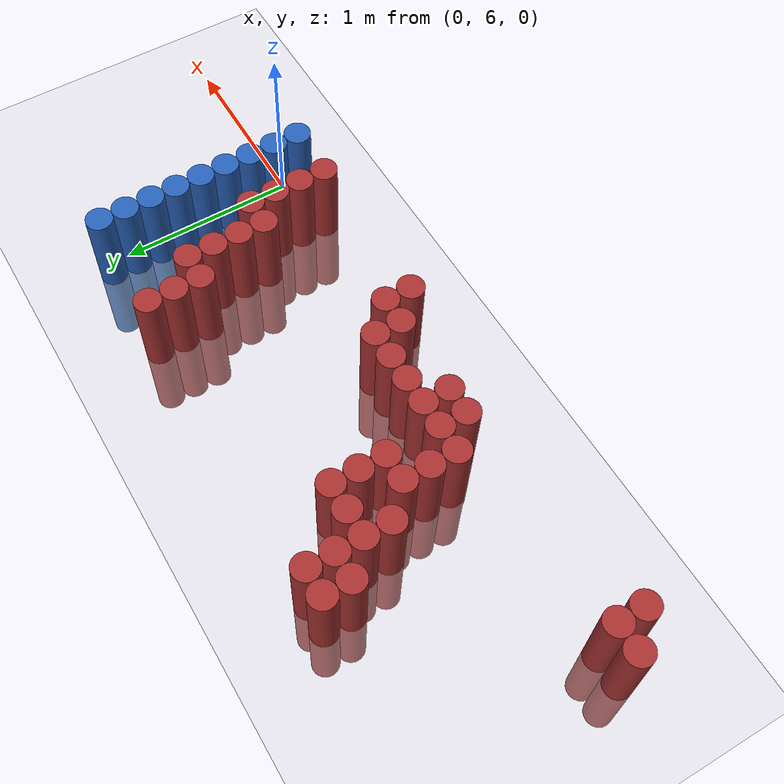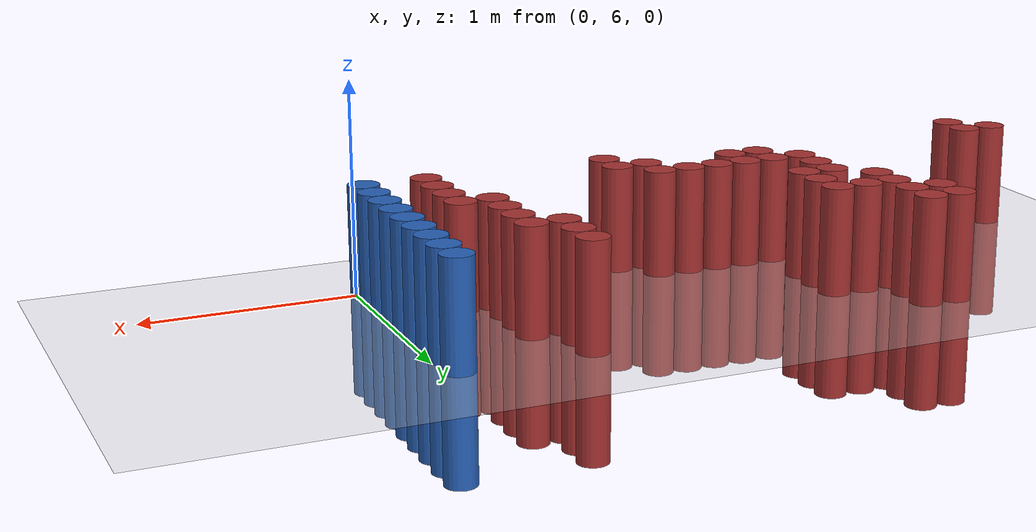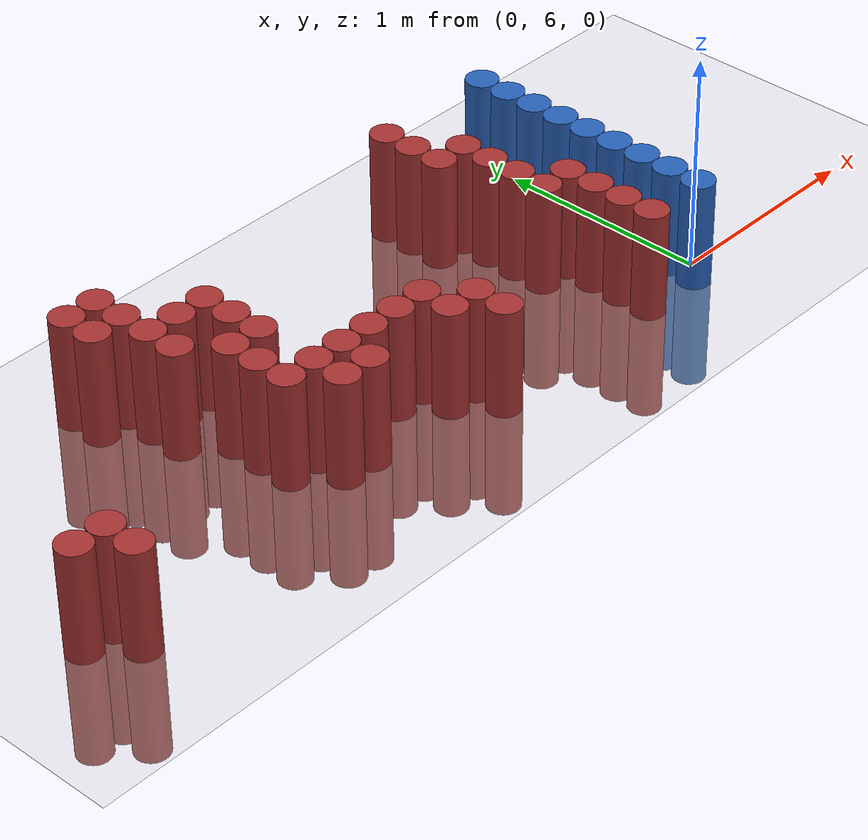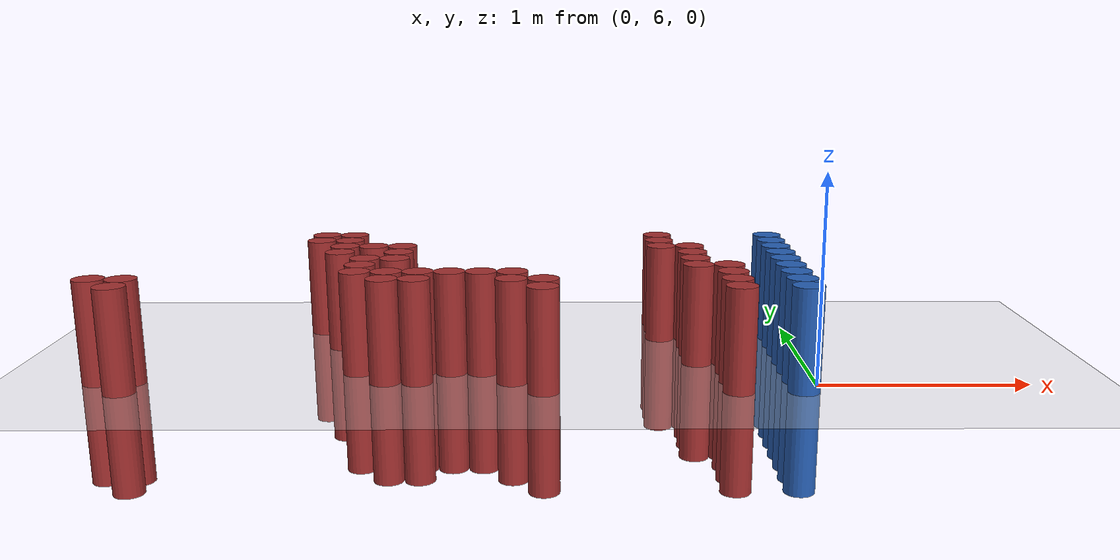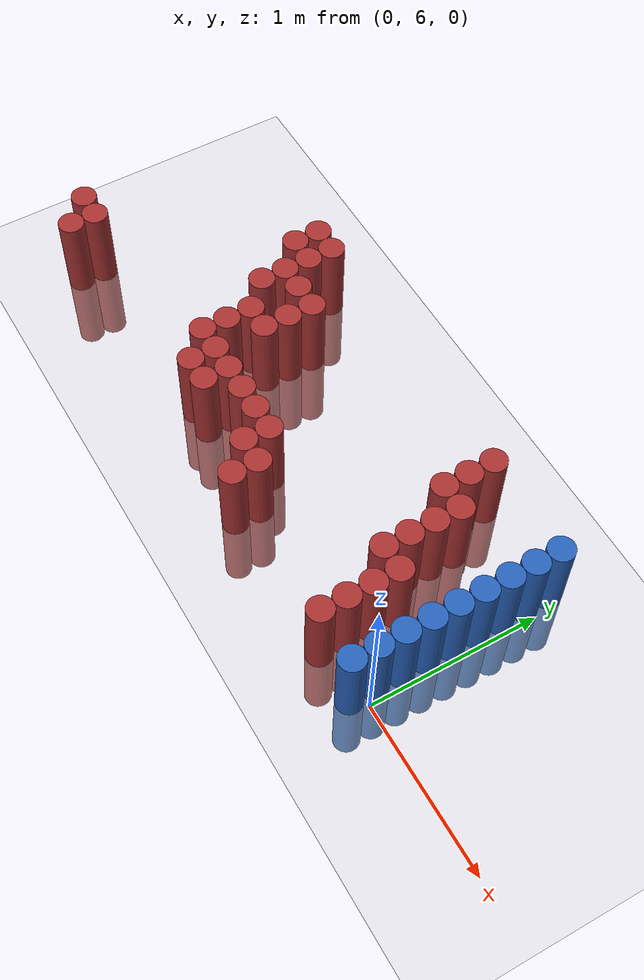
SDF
<sdf version="1.6">
 <world name="default">
  <model name="ground_plane">
   <static>1</static>
   <link name="link">
    <collision name="collision">
     <geometry><plane><normal>0 0 1</normal><size>100 100</size></plane></geometry>
     <surface><friction><ode><mu>100</mu><mu2>50</mu2></ode></friction></surface>
    </collision>
    <visual name="visual">
     <cast_shadows>0</cast_shadows>
     <geometry><plane><normal>0 0 1</normal><size>100 100</size></plane></geometry>
     <material>
      <script><uri>file://media/materials/scripts/gazebo.material</uri><name>Gazebo/Grey</name></script>
     </material>
    </visual>
   </link>
  </model>
  <model name="unit_cylinder_158">
   <static>1</static>
   <pose>-3.375000 6.075000 0.000000 0.000000 0.000000 0.000000</pose>
   <link name="link">
    <inertial>
     <mass>1</mass>
     <inertia><ixx>0.145833</ixx><ixy>0</ixy><ixz>0</ixz><iyy>0.145833</iyy><iyz>0</iyz><izz>0.125</izz></inertia>
    </inertial>
    <collision name="collision">
     <geometry><cylinder><radius>0.075000</radius><length>1</length></cylinder></geometry>
    </collision>
    <visual name="visual">
     <geometry><cylinder><radius>0.075000</radius><length>1</length></cylinder></geometry>
     <material>
      <ambient>0.648000 0.192000 0.192000 1</ambient>
      <diffuse>0.648000 0.192000 0.192000 1</diffuse>
     </material>
     <material>
      <script><name>Gazebo/Grey</name><uri>file://media/materials/scripts/gazebo.material</uri></script>
     </material>
    </visual>
   </link>
  </model>
  <model name="unit_cylinder_167">
   <static>1</static>
   <pose>-3.225000 5.925000 0.000000 0.000000 0.000000 0.000000</pose>
   <link name="link">
    <inertial>
     <mass>1</mass>
     <inertia><ixx>0.145833</ixx><ixy>0</ixy><ixz>0</ixz><iyy>0.145833</iyy><iyz>0</iyz><izz>0.125</izz></inertia>
    </inertial>
    <collision name="collision">
     <geometry><cylinder><radius>0.075000</radius><length>1</length></cylinder></geometry>
    </collision>
    <visual name="visual">
     <geometry><cylinder><radius>0.075000</radius><length>1</length></cylinder></geometry>
     <material>
      <ambient>0.648000 0.192000 0.192000 1</ambient>
      <diffuse>0.648000 0.192000 0.192000 1</diffuse>
     </material>
     <material>
      <script><name>Gazebo/Grey</name><uri>file://media/materials/scripts/gazebo.material</uri></script>
     </material>
    </visual>
   </link>
  </model>
  <model name="unit_cylinder_168">
   <static>1</static>
   <pose>-3.225000 6.075000 0.000000 0.000000 0.000000 0.000000</pose>
   <link name="link">
    <inertial>
     <mass>1</mass>
     <inertia><ixx>0.145833</ixx><ixy>0</ixy><ixz>0</ixz><iyy>0.145833</iyy><iyz>0</iyz><izz>0.125</izz></inertia>
    </inertial>
    <collision name="collision">
     <geometry><cylinder><radius>0.075000</radius><length>1</length></cylinder></geometry>
    </collision>
    <visual name="visual">
     <geometry><cylinder><radius>0.075000</radius><length>1</length></cylinder></geometry>
     <material>
      <ambient>0.648000 0.192000 0.192000 1</ambient>
      <diffuse>0.648000 0.192000 0.192000 1</diffuse>
     </material>
     <material>
      <script><name>Gazebo/Grey</name><uri>file://media/materials/scripts/gazebo.material</uri></script>
     </material>
    </visual>
   </link>
  </model>
  <model name="unit_cylinder_173">
   <static>1</static>
   <pose>-2.475000 6.975000 0.000000 0.000000 0.000000 0.000000</pose>
   <link name="link">
    <inertial>
     <mass>1</mass>
     <inertia><ixx>0.145833</ixx><ixy>0</ixy><ixz>0</ixz><iyy>0.145833</iyy><iyz>0</iyz><izz>0.125</izz></inertia>
    </inertial>
    <collision name="collision">
     <geometry><cylinder><radius>0.075000</radius><length>1</length></cylinder></geometry>
    </collision>
    <visual name="visual">
     <geometry><cylinder><radius>0.075000</radius><length>1</length></cylinder></geometry>
     <material>
      <ambient>0.648000 0.192000 0.192000 1</ambient>
      <diffuse>0.648000 0.192000 0.192000 1</diffuse>
     </material>
     <material>
      <script><name>Gazebo/Grey</name><uri>file://media/materials/scripts/gazebo.material</uri></script>
     </material>
    </visual>
   </link>
  </model>
  <model name="unit_cylinder_174">
   <static>1</static>
   <pose>-2.475000 7.125000 0.000000 0.000000 0.000000 0.000000</pose>
   <link name="link">
    <inertial>
     <mass>1</mass>
     <inertia><ixx>0.145833</ixx><ixy>0</ixy><ixz>0</ixz><iyy>0.145833</iyy><iyz>0</iyz><izz>0.125</izz></inertia>
    </inertial>
    <collision name="collision">
     <geometry><cylinder><radius>0.075000</radius><length>1</length></cylinder></geometry>
    </collision>
    <visual name="visual">
     <geometry><cylinder><radius>0.075000</radius><length>1</length></cylinder></geometry>
     <material>
      <ambient>0.648000 0.192000 0.192000 1</ambient>
      <diffuse>0.648000 0.192000 0.192000 1</diffuse>
     </material>
     <material>
      <script><name>Gazebo/Grey</name><uri>file://media/materials/scripts/gazebo.material</uri></script>
     </material>
    </visual>
   </link>
  </model>
  <model name="unit_cylinder_175">
   <static>1</static>
   <pose>-2.325000 6.675000 0.000000 0.000000 0.000000 0.000000</pose>
   <link name="link">
    <inertial>
     <mass>1</mass>
     <inertia><ixx>0.145833</ixx><ixy>0</ixy><ixz>0</ixz><iyy>0.145833</iyy><iyz>0</iyz><izz>0.125</izz></inertia>
    </inertial>
    <collision name="collision">
     <geometry><cylinder><radius>0.075000</radius><length>1</length></cylinder></geometry>
    </collision>
    <visual name="visual">
     <geometry><cylinder><radius>0.075000</radius><length>1</length></cylinder></geometry>
     <material>
      <ambient>0.648000 0.192000 0.192000 1</ambient>
      <diffuse>0.648000 0.192000 0.192000 1</diffuse>
     </material>
     <material>
      <script><name>Gazebo/Grey</name><uri>file://media/materials/scripts/gazebo.material</uri></script>
     </material>
    </visual>
   </link>
  </model>
  <model name="unit_cylinder_176">
   <static>1</static>
   <pose>-2.325000 6.825000 0.000000 0.000000 0.000000 0.000000</pose>
   <link name="link">
    <inertial>
     <mass>1</mass>
     <inertia><ixx>0.145833</ixx><ixy>0</ixy><ixz>0</ixz><iyy>0.145833</iyy><iyz>0</iyz><izz>0.125</izz></inertia>
    </inertial>
    <collision name="collision">
     <geometry><cylinder><radius>0.075000</radius><length>1</length></cylinder></geometry>
    </collision>
    <visual name="visual">
     <geometry><cylinder><radius>0.075000</radius><length>1</length></cylinder></geometry>
     <material>
      <ambient>0.648000 0.192000 0.192000 1</ambient>
      <diffuse>0.648000 0.192000 0.192000 1</diffuse>
     </material>
     <material>
      <script><name>Gazebo/Grey</name><uri>file://media/materials/scripts/gazebo.material</uri></script>
     </material>
    </visual>
   </link>
  </model>
  <model name="unit_cylinder_177">
   <static>1</static>
   <pose>-2.325000 6.975000 0.000000 0.000000 0.000000 0.000000</pose>
   <link name="link">
    <inertial>
     <mass>1</mass>
     <inertia><ixx>0.145833</ixx><ixy>0</ixy><ixz>0</ixz><iyy>0.145833</iyy><iyz>0</iyz><izz>0.125</izz></inertia>
    </inertial>
    <collision name="collision">
     <geometry><cylinder><radius>0.075000</radius><length>1</length></cylinder></geometry>
    </collision>
    <visual name="visual">
     <geometry><cylinder><radius>0.075000</radius><length>1</length></cylinder></geometry>
     <material>
      <ambient>0.648000 0.192000 0.192000 1</ambient>
      <diffuse>0.648000 0.192000 0.192000 1</diffuse>
     </material>
     <material>
      <script><name>Gazebo/Grey</name><uri>file://media/materials/scripts/gazebo.material</uri></script>
     </material>
    </visual>
   </link>
  </model>
  <model name="unit_cylinder_178">
   <static>1</static>
   <pose>-2.325000 7.125000 0.000000 0.000000 0.000000 0.000000</pose>
   <link name="link">
    <inertial>
     <mass>1</mass>
     <inertia><ixx>0.145833</ixx><ixy>0</ixy><ixz>0</ixz><iyy>0.145833</iyy><iyz>0</iyz><izz>0.125</izz></inertia>
    </inertial>
    <collision name="collision">
     <geometry><cylinder><radius>0.075000</radius><length>1</length></cylinder></geometry>
    </collision>
    <visual name="visual">
     <geometry><cylinder><radius>0.075000</radius><length>1</length></cylinder></geometry>
     <material>
      <ambient>0.648000 0.192000 0.192000 1</ambient>
      <diffuse>0.648000 0.192000 0.192000 1</diffuse>
     </material>
     <material>
      <script><name>Gazebo/Grey</name><uri>file://media/materials/scripts/gazebo.material</uri></script>
     </material>
    </visual>
   </link>
  </model>
  <model name="unit_cylinder_180">
   <static>1</static>
   <pose>-2.175000 6.225000 0.000000 0.000000 0.000000 0.000000</pose>
   <link name="link">
    <inertial>
     <mass>1</mass>
     <inertia><ixx>0.145833</ixx><ixy>0</ixy><ixz>0</ixz><iyy>0.145833</iyy><iyz>0</iyz><izz>0.125</izz></inertia>
    </inertial>
    <collision name="collision">
     <geometry><cylinder><radius>0.075000</radius><length>1</length></cylinder></geometry>
    </collision>
    <visual name="visual">
     <geometry><cylinder><radius>0.075000</radius><length>1</length></cylinder></geometry>
     <material>
      <ambient>0.648000 0.192000 0.192000 1</ambient>
      <diffuse>0.648000 0.192000 0.192000 1</diffuse>
     </material>
     <material>
      <script><name>Gazebo/Grey</name><uri>file://media/materials/scripts/gazebo.material</uri></script>
     </material>
    </visual>
   </link>
  </model>
  <model name="unit_cylinder_181">
   <static>1</static>
   <pose>-2.175000 6.375000 0.000000 0.000000 0.000000 0.000000</pose>
   <link name="link">
    <inertial>
     <mass>1</mass>
     <inertia><ixx>0.145833</ixx><ixy>0</ixy><ixz>0</ixz><iyy>0.145833</iyy><iyz>0</iyz><izz>0.125</izz></inertia>
    </inertial>
    <collision name="collision">
     <geometry><cylinder><radius>0.075000</radius><length>1</length></cylinder></geometry>
    </collision>
    <visual name="visual">
     <geometry><cylinder><radius>0.075000</radius><length>1</length></cylinder></geometry>
     <material>
      <ambient>0.648000 0.192000 0.192000 1</ambient>
      <diffuse>0.648000 0.192000 0.192000 1</diffuse>
     </material>
     <material>
      <script><name>Gazebo/Grey</name><uri>file://media/materials/scripts/gazebo.material</uri></script>
     </material>
    </visual>
   </link>
  </model>
  <model name="unit_cylinder_182">
   <static>1</static>
   <pose>-2.175000 6.525000 0.000000 0.000000 0.000000 0.000000</pose>
   <link name="link">
    <inertial>
     <mass>1</mass>
     <inertia><ixx>0.145833</ixx><ixy>0</ixy><ixz>0</ixz><iyy>0.145833</iyy><iyz>0</iyz><izz>0.125</izz></inertia>
    </inertial>
    <collision name="collision">
     <geometry><cylinder><radius>0.075000</radius><length>1</length></cylinder></geometry>
    </collision>
    <visual name="visual">
     <geometry><cylinder><radius>0.075000</radius><length>1</length></cylinder></geometry>
     <material>
      <ambient>0.648000 0.192000 0.192000 1</ambient>
      <diffuse>0.648000 0.192000 0.192000 1</diffuse>
     </material>
     <material>
      <script><name>Gazebo/Grey</name><uri>file://media/materials/scripts/gazebo.material</uri></script>
     </material>
    </visual>
   </link>
  </model>
  <model name="unit_cylinder_183">
   <static>1</static>
   <pose>-2.175000 6.825000 0.000000 0.000000 0.000000 0.000000</pose>
   <link name="link">
    <inertial>
     <mass>1</mass>
     <inertia><ixx>0.145833</ixx><ixy>0</ixy><ixz>0</ixz><iyy>0.145833</iyy><iyz>0</iyz><izz>0.125</izz></inertia>
    </inertial>
    <collision name="collision">
     <geometry><cylinder><radius>0.075000</radius><length>1</length></cylinder></geometry>
    </collision>
    <visual name="visual">
     <geometry><cylinder><radius>0.075000</radius><length>1</length></cylinder></geometry>
     <material>
      <ambient>0.648000 0.192000 0.192000 1</ambient>
      <diffuse>0.648000 0.192000 0.192000 1</diffuse>
     </material>
     <material>
      <script><name>Gazebo/Grey</name><uri>file://media/materials/scripts/gazebo.material</uri></script>
     </material>
    </visual>
   </link>
  </model>
  <model name="unit_cylinder_188">
   <static>1</static>
   <pose>-2.025000 6.075000 0.000000 0.000000 0.000000 0.000000</pose>
   <link name="link">
    <inertial>
     <mass>1</mass>
     <inertia><ixx>0.145833</ixx><ixy>0</ixy><ixz>0</ixz><iyy>0.145833</iyy><iyz>0</iyz><izz>0.125</izz></inertia>
    </inertial>
    <collision name="collision">
     <geometry><cylinder><radius>0.075000</radius><length>1</length></cylinder></geometry>
    </collision>
    <visual name="visual">
     <geometry><cylinder><radius>0.075000</radius><length>1</length></cylinder></geometry>
     <material>
      <ambient>0.648000 0.192000 0.192000 1</ambient>
      <diffuse>0.648000 0.192000 0.192000 1</diffuse>
     </material>
     <material>
      <script><name>Gazebo/Grey</name><uri>file://media/materials/scripts/gazebo.material</uri></script>
     </material>
    </visual>
   </link>
  </model>
  <model name="unit_cylinder_189">
   <static>1</static>
   <pose>-2.025000 6.225000 0.000000 0.000000 0.000000 0.000000</pose>
   <link name="link">
    <inertial>
     <mass>1</mass>
     <inertia><ixx>0.145833</ixx><ixy>0</ixy><ixz>0</ixz><iyy>0.145833</iyy><iyz>0</iyz><izz>0.125</izz></inertia>
    </inertial>
    <collision name="collision">
     <geometry><cylinder><radius>0.075000</radius><length>1</length></cylinder></geometry>
    </collision>
    <visual name="visual">
     <geometry><cylinder><radius>0.075000</radius><length>1</length></cylinder></geometry>
     <material>
      <ambient>0.648000 0.192000 0.192000 1</ambient>
      <diffuse>0.648000 0.192000 0.192000 1</diffuse>
     </material>
     <material>
      <script><name>Gazebo/Grey</name><uri>file://media/materials/scripts/gazebo.material</uri></script>
     </material>
    </visual>
   </link>
  </model>
  <model name="unit_cylinder_190">
   <static>1</static>
   <pose>-2.025000 6.525000 0.000000 0.000000 0.000000 0.000000</pose>
   <link name="link">
    <inertial>
     <mass>1</mass>
     <inertia><ixx>0.145833</ixx><ixy>0</ixy><ixz>0</ixz><iyy>0.145833</iyy><iyz>0</iyz><izz>0.125</izz></inertia>
    </inertial>
    <collision name="collision">
     <geometry><cylinder><radius>0.075000</radius><length>1</length></cylinder></geometry>
    </collision>
    <visual name="visual">
     <geometry><cylinder><radius>0.075000</radius><length>1</length></cylinder></geometry>
     <material>
      <ambient>0.648000 0.192000 0.192000 1</ambient>
      <diffuse>0.648000 0.192000 0.192000 1</diffuse>
     </material>
     <material>
      <script><name>Gazebo/Grey</name><uri>file://media/materials/scripts/gazebo.material</uri></script>
     </material>
    </visual>
   </link>
  </model>
  <model name="unit_cylinder_191">
   <static>1</static>
   <pose>-2.025000 6.675000 0.000000 0.000000 0.000000 0.000000</pose>
   <link name="link">
    <inertial>
     <mass>1</mass>
     <inertia><ixx>0.145833</ixx><ixy>0</ixy><ixz>0</ixz><iyy>0.145833</iyy><iyz>0</iyz><izz>0.125</izz></inertia>
    </inertial>
    <collision name="collision">
     <geometry><cylinder><radius>0.075000</radius><length>1</length></cylinder></geometry>
    </collision>
    <visual name="visual">
     <geometry><cylinder><radius>0.075000</radius><length>1</length></cylinder></geometry>
     <material>
      <ambient>0.648000 0.192000 0.192000 1</ambient>
      <diffuse>0.648000 0.192000 0.192000 1</diffuse>
     </material>
     <material>
      <script><name>Gazebo/Grey</name><uri>file://media/materials/scripts/gazebo.material</uri></script>
     </material>
    </visual>
   </link>
  </model>
  <model name="unit_cylinder_192">
   <static>1</static>
   <pose>-2.025000 6.825000 0.000000 0.000000 0.000000 0.000000</pose>
   <link name="link">
    <inertial>
     <mass>1</mass>
     <inertia><ixx>0.145833</ixx><ixy>0</ixy><ixz>0</ixz><iyy>0.145833</iyy><iyz>0</iyz><izz>0.125</izz></inertia>
    </inertial>
    <collision name="collision">
     <geometry><cylinder><radius>0.075000</radius><length>1</length></cylinder></geometry>
    </collision>
    <visual name="visual">
     <geometry><cylinder><radius>0.075000</radius><length>1</length></cylinder></geometry>
     <material>
      <ambient>0.648000 0.192000 0.192000 1</ambient>
      <diffuse>0.648000 0.192000 0.192000 1</diffuse>
     </material>
     <material>
      <script><name>Gazebo/Grey</name><uri>file://media/materials/scripts/gazebo.material</uri></script>
     </material>
    </visual>
   </link>
  </model>
  <model name="unit_cylinder_195">
   <static>1</static>
   <pose>-1.875000 6.075000 0.000000 0.000000 0.000000 0.000000</pose>
   <link name="link">
    <inertial>
     <mass>1</mass>
     <inertia><ixx>0.145833</ixx><ixy>0</ixy><ixz>0</ixz><iyy>0.145833</iyy><iyz>0</iyz><izz>0.125</izz></inertia>
    </inertial>
    <collision name="collision">
     <geometry><cylinder><radius>0.075000</radius><length>1</length></cylinder></geometry>
    </collision>
    <visual name="visual">
     <geometry><cylinder><radius>0.075000</radius><length>1</length></cylinder></geometry>
     <material>
      <ambient>0.648000 0.192000 0.192000 1</ambient>
      <diffuse>0.648000 0.192000 0.192000 1</diffuse>
     </material>
     <material>
      <script><name>Gazebo/Grey</name><uri>file://media/materials/scripts/gazebo.material</uri></script>
     </material>
    </visual>
   </link>
  </model>
  <model name="unit_cylinder_196">
   <static>1</static>
   <pose>-1.875000 6.225000 0.000000 0.000000 0.000000 0.000000</pose>
   <link name="link">
    <inertial>
     <mass>1</mass>
     <inertia><ixx>0.145833</ixx><ixy>0</ixy><ixz>0</ixz><iyy>0.145833</iyy><iyz>0</iyz><izz>0.125</izz></inertia>
    </inertial>
    <collision name="collision">
     <geometry><cylinder><radius>0.075000</radius><length>1</length></cylinder></geometry>
    </collision>
    <visual name="visual">
     <geometry><cylinder><radius>0.075000</radius><length>1</length></cylinder></geometry>
     <material>
      <ambient>0.648000 0.192000 0.192000 1</ambient>
      <diffuse>0.648000 0.192000 0.192000 1</diffuse>
     </material>
     <material>
      <script><name>Gazebo/Grey</name><uri>file://media/materials/scripts/gazebo.material</uri></script>
     </material>
    </visual>
   </link>
  </model>
  <model name="unit_cylinder_199">
   <static>1</static>
   <pose>-1.725000 6.225000 0.000000 0.000000 0.000000 0.000000</pose>
   <link name="link">
    <inertial>
     <mass>1</mass>
     <inertia><ixx>0.145833</ixx><ixy>0</ixy><ixz>0</ixz><iyy>0.145833</iyy><iyz>0</iyz><izz>0.125</izz></inertia>
    </inertial>
    <collision name="collision">
     <geometry><cylinder><radius>0.075000</radius><length>1</length></cylinder></geometry>
    </collision>
    <visual name="visual">
     <geometry><cylinder><radius>0.075000</radius><length>1</length></cylinder></geometry>
     <material>
      <ambient>0.648000 0.192000 0.192000 1</ambient>
      <diffuse>0.648000 0.192000 0.192000 1</diffuse>
     </material>
     <material>
      <script><name>Gazebo/Grey</name><uri>file://media/materials/scripts/gazebo.material</uri></script>
     </material>
    </visual>
   </link>
  </model>
  <model name="unit_cylinder_202">
   <static>1</static>
   <pose>-1.575000 6.225000 0.000000 0.000000 0.000000 0.000000</pose>
   <link name="link">
    <inertial>
     <mass>1</mass>
     <inertia><ixx>0.145833</ixx><ixy>0</ixy><ixz>0</ixz><iyy>0.145833</iyy><iyz>0</iyz><izz>0.125</izz></inertia>
    </inertial>
    <collision name="collision">
     <geometry><cylinder><radius>0.075000</radius><length>1</length></cylinder></geometry>
    </collision>
    <visual name="visual">
     <geometry><cylinder><radius>0.075000</radius><length>1</length></cylinder></geometry>
     <material>
      <ambient>0.648000 0.192000 0.192000 1</ambient>
      <diffuse>0.648000 0.192000 0.192000 1</diffuse>
     </material>
     <material>
      <script><name>Gazebo/Grey</name><uri>file://media/materials/scripts/gazebo.material</uri></script>
     </material>
    </visual>
   </link>
  </model>
  <model name="unit_cylinder_204">
   <static>1</static>
   <pose>-1.425000 6.075000 0.000000 0.000000 0.000000 0.000000</pose>
   <link name="link">
    <inertial>
     <mass>1</mass>
     <inertia><ixx>0.145833</ixx><ixy>0</ixy><ixz>0</ixz><iyy>0.145833</iyy><iyz>0</iyz><izz>0.125</izz></inertia>
    </inertial>
    <collision name="collision">
     <geometry><cylinder><radius>0.075000</radius><length>1</length></cylinder></geometry>
    </collision>
    <visual name="visual">
     <geometry><cylinder><radius>0.075000</radius><length>1</length></cylinder></geometry>
     <material>
      <ambient>0.648000 0.192000 0.192000 1</ambient>
      <diffuse>0.648000 0.192000 0.192000 1</diffuse>
     </material>
     <material>
      <script><name>Gazebo/Grey</name><uri>file://media/materials/scripts/gazebo.material</uri></script>
     </material>
    </visual>
   </link>
  </model>
  <model name="unit_cylinder_205">
   <static>1</static>
   <pose>-1.425000 6.225000 0.000000 0.000000 0.000000 0.000000</pose>
   <link name="link">
    <inertial>
     <mass>1</mass>
     <inertia><ixx>0.145833</ixx><ixy>0</ixy><ixz>0</ixz><iyy>0.145833</iyy><iyz>0</iyz><izz>0.125</izz></inertia>
    </inertial>
    <collision name="collision">
     <geometry><cylinder><radius>0.075000</radius><length>1</length></cylinder></geometry>
    </collision>
    <visual name="visual">
     <geometry><cylinder><radius>0.075000</radius><length>1</length></cylinder></geometry>
     <material>
      <ambient>0.648000 0.192000 0.192000 1</ambient>
      <diffuse>0.648000 0.192000 0.192000 1</diffuse>
     </material>
     <material>
      <script><name>Gazebo/Grey</name><uri>file://media/materials/scripts/gazebo.material</uri></script>
     </material>
    </visual>
   </link>
  </model>
  <model name="unit_cylinder_212">
   <static>1</static>
   <pose>-1.275000 5.925000 0.000000 0.000000 0.000000 0.000000</pose>
   <link name="link">
    <inertial>
     <mass>1</mass>
     <inertia><ixx>0.145833</ixx><ixy>0</ixy><ixz>0</ixz><iyy>0.145833</iyy><iyz>0</iyz><izz>0.125</izz></inertia>
    </inertial>
    <collision name="collision">
     <geometry><cylinder><radius>0.075000</radius><length>1</length></cylinder></geometry>
    </collision>
    <visual name="visual">
     <geometry><cylinder><radius>0.075000</radius><length>1</length></cylinder></geometry>
     <material>
      <ambient>0.648000 0.192000 0.192000 1</ambient>
      <diffuse>0.648000 0.192000 0.192000 1</diffuse>
     </material>
     <material>
      <script><name>Gazebo/Grey</name><uri>file://media/materials/scripts/gazebo.material</uri></script>
     </material>
    </visual>
   </link>
  </model>
  <model name="unit_cylinder_213">
   <static>1</static>
   <pose>-1.275000 6.075000 0.000000 0.000000 0.000000 0.000000</pose>
   <link name="link">
    <inertial>
     <mass>1</mass>
     <inertia><ixx>0.145833</ixx><ixy>0</ixy><ixz>0</ixz><iyy>0.145833</iyy><iyz>0</iyz><izz>0.125</izz></inertia>
    </inertial>
    <collision name="collision">
     <geometry><cylinder><radius>0.075000</radius><length>1</length></cylinder></geometry>
    </collision>
    <visual name="visual">
     <geometry><cylinder><radius>0.075000</radius><length>1</length></cylinder></geometry>
     <material>
      <ambient>0.648000 0.192000 0.192000 1</ambient>
      <diffuse>0.648000 0.192000 0.192000 1</diffuse>
     </material>
     <material>
      <script><name>Gazebo/Grey</name><uri>file://media/materials/scripts/gazebo.material</uri></script>
     </material>
    </visual>
   </link>
  </model>
  <model name="unit_cylinder_229">
   <static>1</static>
   <pose>-0.675000 6.825000 0.000000 0.000000 0.000000 0.000000</pose>
   <link name="link">
    <inertial>
     <mass>1</mass>
     <inertia><ixx>0.145833</ixx><ixy>0</ixy><ixz>0</ixz><iyy>0.145833</iyy><iyz>0</iyz><izz>0.125</izz></inertia>
    </inertial>
    <collision name="collision">
     <geometry><cylinder><radius>0.075000</radius><length>1</length></cylinder></geometry>
    </collision>
    <visual name="visual">
     <geometry><cylinder><radius>0.075000</radius><length>1</length></cylinder></geometry>
     <material>
      <ambient>0.648000 0.192000 0.192000 1</ambient>
      <diffuse>0.648000 0.192000 0.192000 1</diffuse>
     </material>
     <material>
      <script><name>Gazebo/Grey</name><uri>file://media/materials/scripts/gazebo.material</uri></script>
     </material>
    </visual>
   </link>
  </model>
  <model name="unit_cylinder_230">
   <static>1</static>
   <pose>-0.675000 6.975000 0.000000 0.000000 0.000000 0.000000</pose>
   <link name="link">
    <inertial>
     <mass>1</mass>
     <inertia><ixx>0.145833</ixx><ixy>0</ixy><ixz>0</ixz><iyy>0.145833</iyy><iyz>0</iyz><izz>0.125</izz></inertia>
    </inertial>
    <collision name="collision">
     <geometry><cylinder><radius>0.075000</radius><length>1</length></cylinder></geometry>
    </collision>
    <visual name="visual">
     <geometry><cylinder><radius>0.075000</radius><length>1</length></cylinder></geometry>
     <material>
      <ambient>0.648000 0.192000 0.192000 1</ambient>
      <diffuse>0.648000 0.192000 0.192000 1</diffuse>
     </material>
     <material>
      <script><name>Gazebo/Grey</name><uri>file://media/materials/scripts/gazebo.material</uri></script>
     </material>
    </visual>
   </link>
  </model>
  <model name="unit_cylinder_231">
   <static>1</static>
   <pose>-0.675000 7.125000 0.000000 0.000000 0.000000 0.000000</pose>
   <link name="link">
    <inertial>
     <mass>1</mass>
     <inertia><ixx>0.145833</ixx><ixy>0</ixy><ixz>0</ixz><iyy>0.145833</iyy><iyz>0</iyz><izz>0.125</izz></inertia>
    </inertial>
    <collision name="collision">
     <geometry><cylinder><radius>0.075000</radius><length>1</length></cylinder></geometry>
    </collision>
    <visual name="visual">
     <geometry><cylinder><radius>0.075000</radius><length>1</length></cylinder></geometry>
     <material>
      <ambient>0.648000 0.192000 0.192000 1</ambient>
      <diffuse>0.648000 0.192000 0.192000 1</diffuse>
     </material>
     <material>
      <script><name>Gazebo/Grey</name><uri>file://media/materials/scripts/gazebo.material</uri></script>
     </material>
    </visual>
   </link>
  </model>
  <model name="unit_cylinder_234">
   <static>1</static>
   <pose>-0.525000 6.375000 0.000000 0.000000 0.000000 0.000000</pose>
   <link name="link">
    <inertial>
     <mass>1</mass>
     <inertia><ixx>0.145833</ixx><ixy>0</ixy><ixz>0</ixz><iyy>0.145833</iyy><iyz>0</iyz><izz>0.125</izz></inertia>
    </inertial>
    <collision name="collision">
     <geometry><cylinder><radius>0.075000</radius><length>1</length></cylinder></geometry>
    </collision>
    <visual name="visual">
     <geometry><cylinder><radius>0.075000</radius><length>1</length></cylinder></geometry>
     <material>
      <ambient>0.648000 0.192000 0.192000 1</ambient>
      <diffuse>0.648000 0.192000 0.192000 1</diffuse>
     </material>
     <material>
      <script><name>Gazebo/Grey</name><uri>file://media/materials/scripts/gazebo.material</uri></script>
     </material>
    </visual>
   </link>
  </model>
  <model name="unit_cylinder_235">
   <static>1</static>
   <pose>-0.525000 6.525000 0.000000 0.000000 0.000000 0.000000</pose>
   <link name="link">
    <inertial>
     <mass>1</mass>
     <inertia><ixx>0.145833</ixx><ixy>0</ixy><ixz>0</ixz><iyy>0.145833</iyy><iyz>0</iyz><izz>0.125</izz></inertia>
    </inertial>
    <collision name="collision">
     <geometry><cylinder><radius>0.075000</radius><length>1</length></cylinder></geometry>
    </collision>
    <visual name="visual">
     <geometry><cylinder><radius>0.075000</radius><length>1</length></cylinder></geometry>
     <material>
      <ambient>0.648000 0.192000 0.192000 1</ambient>
      <diffuse>0.648000 0.192000 0.192000 1</diffuse>
     </material>
     <material>
      <script><name>Gazebo/Grey</name><uri>file://media/materials/scripts/gazebo.material</uri></script>
     </material>
    </visual>
   </link>
  </model>
  <model name="unit_cylinder_236">
   <static>1</static>
   <pose>-0.525000 6.675000 0.000000 0.000000 0.000000 0.000000</pose>
   <link name="link">
    <inertial>
     <mass>1</mass>
     <inertia><ixx>0.145833</ixx><ixy>0</ixy><ixz>0</ixz><iyy>0.145833</iyy><iyz>0</iyz><izz>0.125</izz></inertia>
    </inertial>
    <collision name="collision">
     <geometry><cylinder><radius>0.075000</radius><length>1</length></cylinder></geometry>
    </collision>
    <visual name="visual">
     <geometry><cylinder><radius>0.075000</radius><length>1</length></cylinder></geometry>
     <material>
      <ambient>0.648000 0.192000 0.192000 1</ambient>
      <diffuse>0.648000 0.192000 0.192000 1</diffuse>
     </material>
     <material>
      <script><name>Gazebo/Grey</name><uri>file://media/materials/scripts/gazebo.material</uri></script>
     </material>
    </visual>
   </link>
  </model>
  <model name="unit_cylinder_237">
   <static>1</static>
   <pose>-0.525000 6.825000 0.000000 0.000000 0.000000 0.000000</pose>
   <link name="link">
    <inertial>
     <mass>1</mass>
     <inertia><ixx>0.145833</ixx><ixy>0</ixy><ixz>0</ixz><iyy>0.145833</iyy><iyz>0</iyz><izz>0.125</izz></inertia>
    </inertial>
    <collision name="collision">
     <geometry><cylinder><radius>0.075000</radius><length>1</length></cylinder></geometry>
    </collision>
    <visual name="visual">
     <geometry><cylinder><radius>0.075000</radius><length>1</length></cylinder></geometry>
     <material>
      <ambient>0.648000 0.192000 0.192000 1</ambient>
      <diffuse>0.648000 0.192000 0.192000 1</diffuse>
     </material>
     <material>
      <script><name>Gazebo/Grey</name><uri>file://media/materials/scripts/gazebo.material</uri></script>
     </material>
    </visual>
   </link>
  </model>
  <model name="unit_cylinder_240">
   <static>1</static>
   <pose>-0.375000 5.925000 0.000000 0.000000 0.000000 0.000000</pose>
   <link name="link">
    <inertial>
     <mass>1</mass>
     <inertia><ixx>0.145833</ixx><ixy>0</ixy><ixz>0</ixz><iyy>0.145833</iyy><iyz>0</iyz><izz>0.125</izz></inertia>
    </inertial>
    <collision name="collision">
     <geometry><cylinder><radius>0.075000</radius><length>1</length></cylinder></geometry>
    </collision>
    <visual name="visual">
     <geometry><cylinder><radius>0.075000</radius><length>1</length></cylinder></geometry>
     <material>
      <ambient>0.648000 0.192000 0.192000 1</ambient>
      <diffuse>0.648000 0.192000 0.192000 1</diffuse>
     </material>
     <material>
      <script><name>Gazebo/Grey</name><uri>file://media/materials/scripts/gazebo.material</uri></script>
     </material>
    </visual>
   </link>
  </model>
  <model name="unit_cylinder_241">
   <static>1</static>
   <pose>-0.375000 6.075000 0.000000 0.000000 0.000000 0.000000</pose>
   <link name="link">
    <inertial>
     <mass>1</mass>
     <inertia><ixx>0.145833</ixx><ixy>0</ixy><ixz>0</ixz><iyy>0.145833</iyy><iyz>0</iyz><izz>0.125</izz></inertia>
    </inertial>
    <collision name="collision">
     <geometry><cylinder><radius>0.075000</radius><length>1</length></cylinder></geometry>
    </collision>
    <visual name="visual">
     <geometry><cylinder><radius>0.075000</radius><length>1</length></cylinder></geometry>
     <material>
      <ambient>0.648000 0.192000 0.192000 1</ambient>
      <diffuse>0.648000 0.192000 0.192000 1</diffuse>
     </material>
     <material>
      <script><name>Gazebo/Grey</name><uri>file://media/materials/scripts/gazebo.material</uri></script>
     </material>
    </visual>
   </link>
  </model>
  <model name="unit_cylinder_242">
   <static>1</static>
   <pose>-0.375000 6.225000 0.000000 0.000000 0.000000 0.000000</pose>
   <link name="link">
    <inertial>
     <mass>1</mass>
     <inertia><ixx>0.145833</ixx><ixy>0</ixy><ixz>0</ixz><iyy>0.145833</iyy><iyz>0</iyz><izz>0.125</izz></inertia>
    </inertial>
    <collision name="collision">
     <geometry><cylinder><radius>0.075000</radius><length>1</length></cylinder></geometry>
    </collision>
    <visual name="visual">
     <geometry><cylinder><radius>0.075000</radius><length>1</length></cylinder></geometry>
     <material>
      <ambient>0.648000 0.192000 0.192000 1</ambient>
      <diffuse>0.648000 0.192000 0.192000 1</diffuse>
     </material>
     <material>
      <script><name>Gazebo/Grey</name><uri>file://media/materials/scripts/gazebo.material</uri></script>
     </material>
    </visual>
   </link>
  </model>
  <model name="unit_cylinder_243">
   <static>1</static>
   <pose>-0.375000 6.375000 0.000000 0.000000 0.000000 0.000000</pose>
   <link name="link">
    <inertial>
     <mass>1</mass>
     <inertia><ixx>0.145833</ixx><ixy>0</ixy><ixz>0</ixz><iyy>0.145833</iyy><iyz>0</iyz><izz>0.125</izz></inertia>
    </inertial>
    <collision name="collision">
     <geometry><cylinder><radius>0.075000</radius><length>1</length></cylinder></geometry>
    </collision>
    <visual name="visual">
     <geometry><cylinder><radius>0.075000</radius><length>1</length></cylinder></geometry>
     <material>
      <ambient>0.648000 0.192000 0.192000 1</ambient>
      <diffuse>0.648000 0.192000 0.192000 1</diffuse>
     </material>
     <material>
      <script><name>Gazebo/Grey</name><uri>file://media/materials/scripts/gazebo.material</uri></script>
     </material>
    </visual>
   </link>
  </model>
  <model name="unit_cylinder_251">
   <static>1</static>
   <pose>-0.075000 5.925000 0.000000 0.000000 0.000000 0.000000</pose>
   <link name="link">
    <inertial>
     <mass>1</mass>
     <inertia><ixx>0.145833</ixx><ixy>0</ixy><ixz>0</ixz><iyy>0.145833</iyy><iyz>0</iyz><izz>0.125</izz></inertia>
    </inertial>
    <collision name="collision">
     <geometry><cylinder><radius>0.075000</radius><length>1</length></cylinder></geometry>
    </collision>
    <visual name="visual">
     <geometry><cylinder><radius>0.075000</radius><length>1</length></cylinder></geometry>
     <material>
      <ambient>0.152000 0.379000 0.720000 1</ambient>
      <diffuse>0.152000 0.379000 0.720000 1</diffuse>
     </material>
     <material>
      <script><name>Gazebo/Grey</name><uri>file://media/materials/scripts/gazebo.material</uri></script>
     </material>
    </visual>
   </link>
  </model>
  <model name="unit_cylinder_252">
   <static>1</static>
   <pose>-0.075000 6.075000 0.000000 0.000000 0.000000 0.000000</pose>
   <link name="link">
    <inertial>
     <mass>1</mass>
     <inertia><ixx>0.145833</ixx><ixy>0</ixy><ixz>0</ixz><iyy>0.145833</iyy><iyz>0</iyz><izz>0.125</izz></inertia>
    </inertial>
    <collision name="collision">
     <geometry><cylinder><radius>0.075000</radius><length>1</length></cylinder></geometry>
    </collision>
    <visual name="visual">
     <geometry><cylinder><radius>0.075000</radius><length>1</length></cylinder></geometry>
     <material>
      <ambient>0.152000 0.379000 0.720000 1</ambient>
      <diffuse>0.152000 0.379000 0.720000 1</diffuse>
     </material>
     <material>
      <script><name>Gazebo/Grey</name><uri>file://media/materials/scripts/gazebo.material</uri></script>
     </material>
    </visual>
   </link>
  </model>
  <model name="unit_cylinder_253">
   <static>1</static>
   <pose>-0.075000 6.225000 0.000000 0.000000 0.000000 0.000000</pose>
   <link name="link">
    <inertial>
     <mass>1</mass>
     <inertia><ixx>0.145833</ixx><ixy>0</ixy><ixz>0</ixz><iyy>0.145833</iyy><iyz>0</iyz><izz>0.125</izz></inertia>
    </inertial>
    <collision name="collision">
     <geometry><cylinder><radius>0.075000</radius><length>1</length></cylinder></geometry>
    </collision>
    <visual name="visual">
     <geometry><cylinder><radius>0.075000</radius><length>1</length></cylinder></geometry>
     <material>
      <ambient>0.152000 0.379000 0.720000 1</ambient>
      <diffuse>0.152000 0.379000 0.720000 1</diffuse>
     </material>
     <material>
      <script><name>Gazebo/Grey</name><uri>file://media/materials/scripts/gazebo.material</uri></script>
     </material>
    </visual>
   </link>
  </model>
  <model name="unit_cylinder_254">
   <static>1</static>
   <pose>-0.075000 6.375000 0.000000 0.000000 0.000000 0.000000</pose>
   <link name="link">
    <inertial>
     <mass>1</mass>
     <inertia><ixx>0.145833</ixx><ixy>0</ixy><ixz>0</ixz><iyy>0.145833</iyy><iyz>0</iyz><izz>0.125</izz></inertia>
    </inertial>
    <collision name="collision">
     <geometry><cylinder><radius>0.075000</radius><length>1</length></cylinder></geometry>
    </collision>
    <visual name="visual">
     <geometry><cylinder><radius>0.075000</radius><length>1</length></cylinder></geometry>
     <material>
      <ambient>0.152000 0.379000 0.720000 1</ambient>
      <diffuse>0.152000 0.379000 0.720000 1</diffuse>
     </material>
     <material>
      <script><name>Gazebo/Grey</name><uri>file://media/materials/scripts/gazebo.material</uri></script>
     </material>
    </visual>
   </link>
  </model>
  <model name="unit_cylinder_255">
   <static>1</static>
   <pose>-0.075000 6.525000 0.000000 0.000000 0.000000 0.000000</pose>
   <link name="link">
    <inertial>
     <mass>1</mass>
     <inertia><ixx>0.145833</ixx><ixy>0</ixy><ixz>0</ixz><iyy>0.145833</iyy><iyz>0</iyz><izz>0.125</izz></inertia>
    </inertial>
    <collision name="collision">
     <geometry><cylinder><radius>0.075000</radius><length>1</length></cylinder></geometry>
    </collision>
    <visual name="visual">
     <geometry><cylinder><radius>0.075000</radius><length>1</length></cylinder></geometry>
     <material>
      <ambient>0.152000 0.379000 0.720000 1</ambient>
      <diffuse>0.152000 0.379000 0.720000 1</diffuse>
     </material>
     <material>
      <script><name>Gazebo/Grey</name><uri>file://media/materials/scripts/gazebo.material</uri></script>
     </material>
    </visual>
   </link>
  </model>
  <model name="unit_cylinder_256">
   <static>1</static>
   <pose>-0.075000 6.675000 0.000000 0.000000 0.000000 0.000000</pose>
   <link name="link">
    <inertial>
     <mass>1</mass>
     <inertia><ixx>0.145833</ixx><ixy>0</ixy><ixz>0</ixz><iyy>0.145833</iyy><iyz>0</iyz><izz>0.125</izz></inertia>
    </inertial>
    <collision name="collision">
     <geometry><cylinder><radius>0.075000</radius><length>1</length></cylinder></geometry>
    </collision>
    <visual name="visual">
     <geometry><cylinder><radius>0.075000</radius><length>1</length></cylinder></geometry>
     <material>
      <ambient>0.152000 0.379000 0.720000 1</ambient>
      <diffuse>0.152000 0.379000 0.720000 1</diffuse>
     </material>
     <material>
      <script><name>Gazebo/Grey</name><uri>file://media/materials/scripts/gazebo.material</uri></script>
     </material>
    </visual>
   </link>
  </model>
  <model name="unit_cylinder_257">
   <static>1</static>
   <pose>-0.075000 6.825000 0.000000 0.000000 0.000000 0.000000</pose>
   <link name="link">
    <inertial>
     <mass>1</mass>
     <inertia><ixx>0.145833</ixx><ixy>0</ixy><ixz>0</ixz><iyy>0.145833</iyy><iyz>0</iyz><izz>0.125</izz></inertia>
    </inertial>
    <collision name="collision">
     <geometry><cylinder><radius>0.075000</radius><length>1</length></cylinder></geometry>
    </collision>
    <visual name="visual">
     <geometry><cylinder><radius>0.075000</radius><length>1</length></cylinder></geometry>
     <material>
      <ambient>0.152000 0.379000 0.720000 1</ambient>
      <diffuse>0.152000 0.379000 0.720000 1</diffuse>
     </material>
     <material>
      <script><name>Gazebo/Grey</name><uri>file://media/materials/scripts/gazebo.material</uri></script>
     </material>
    </visual>
   </link>
  </model>
  <model name="unit_cylinder_258">
   <static>1</static>
   <pose>-0.075000 6.975000 0.000000 0.000000 0.000000 0.000000</pose>
   <link name="link">
    <inertial>
     <mass>1</mass>
     <inertia><ixx>0.145833</ixx><ixy>0</ixy><ixz>0</ixz><iyy>0.145833</iyy><iyz>0</iyz><izz>0.125</izz></inertia>
    </inertial>
    <collision name="collision">
     <geometry><cylinder><radius>0.075000</radius><length>1</length></cylinder></geometry>
    </collision>
    <visual name="visual">
     <geometry><cylinder><radius>0.075000</radius><length>1</length></cylinder></geometry>
     <material>
      <ambient>0.152000 0.379000 0.720000 1</ambient>
      <diffuse>0.152000 0.379000 0.720000 1</diffuse>
     </material>
     <material>
      <script><name>Gazebo/Grey</name><uri>file://media/materials/scripts/gazebo.material</uri></script>
     </material>
    </visual>
   </link>
  </model>
  <model name="unit_cylinder_259">
   <static>1</static>
   <pose>-0.075000 7.125000 0.000000 0.000000 0.000000 0.000000</pose>
   <link name="link">
    <inertial>
     <mass>1</mass>
     <inertia><ixx>0.145833</ixx><ixy>0</ixy><ixz>0</ixz><iyy>0.145833</iyy><iyz>0</iyz><izz>0.125</izz></inertia>
    </inertial>
    <collision name="collision">
     <geometry><cylinder><radius>0.075000</radius><length>1</length></cylinder></geometry>
    </collision>
    <visual name="visual">
     <geometry><cylinder><radius>0.075000</radius><length>1</length></cylinder></geometry>
     <material>
      <ambient>0.152000 0.379000 0.720000 1</ambient>
      <diffuse>0.152000 0.379000 0.720000 1</diffuse>
     </material>
     <material>
      <script><name>Gazebo/Grey</name><uri>file://media/materials/scripts/gazebo.material</uri></script>
     </material>
    </visual>
   </link>
  </model>
 </world>
</sdf>
